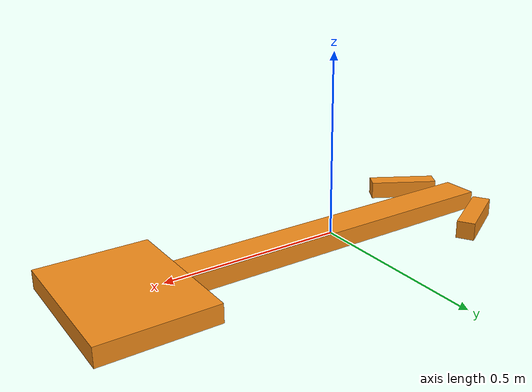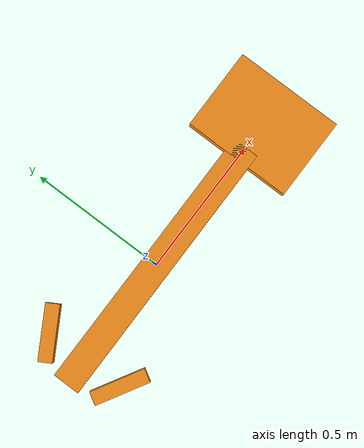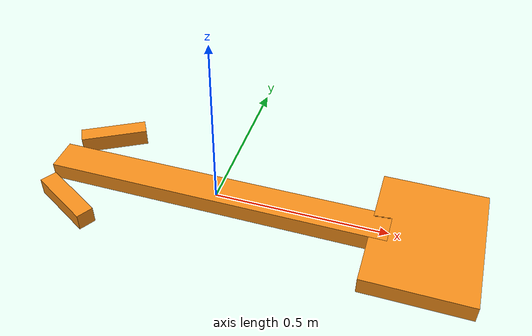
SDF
<?xml version="1.0" ?>
<sdf version='1.7'>
  <model name='path_arrow'>
    <static>1</static>
    <link name='arrow_link'>
      <!-- 箭头主体 -->
      <visual name='arrow_body'>
        <pose>0 0 0 0 0 0</pose>
        <geometry>
          <box>
            <size>1.0 0.1 0.05</size>
          </box>
        </geometry>
        <material>
          <script>
            <uri>file://media/materials/scripts/gazebo.material</uri>
            <name>Gazebo/Orange</name>
          </script>
        </material>
      </visual>

      <!-- 箭头头部 -->
      <visual name='arrow_head'>
        <pose>0.6 0 0 0 0 0</pose>
        <geometry>
          <box>
            <size>0.3 0.4 0.05</size>
          </box>
        </geometry>
        <material>
          <script>
            <uri>file://media/materials/scripts/gazebo.material</uri>
            <name>Gazebo/Orange</name>
          </script>
        </material>
      </visual>

      <!-- 箭头羽毛1 -->
      <visual name='arrow_feather_1'>
        <pose>-0.4 0.15 0 0 0 0.5236</pose>
        <geometry>
          <box>
            <size>0.2 0.05 0.05</size>
          </box>
        </geometry>
        <material>
          <script>
            <uri>file://media/materials/scripts/gazebo.material</uri>
            <name>Gazebo/Orange</name>
          </script>
        </material>
      </visual>

      <!-- 箭头羽毛2 -->
      <visual name='arrow_feather_2'>
        <pose>-0.4 -0.15 0 0 0 -0.5236</pose>
        <geometry>
          <box>
            <size>0.2 0.05 0.05</size>
          </box>
        </geometry>
        <material>
          <script>
            <uri>file://media/materials/scripts/gazebo.material</uri>
            <name>Gazebo/Orange</name>
          </script>
        </material>
      </visual>
    </link>
  </model>
</sdf>
